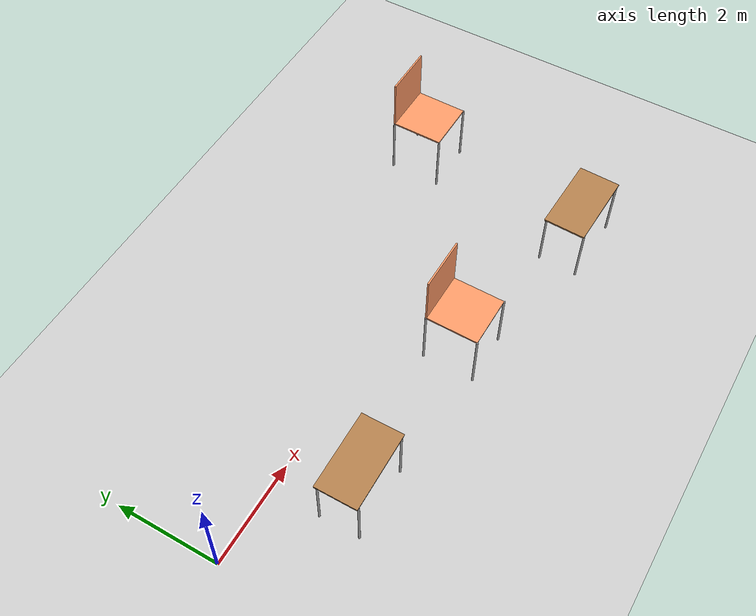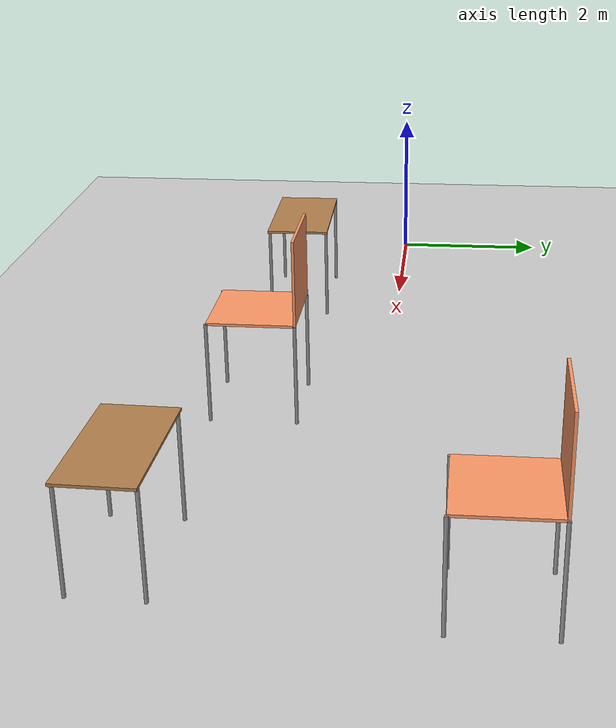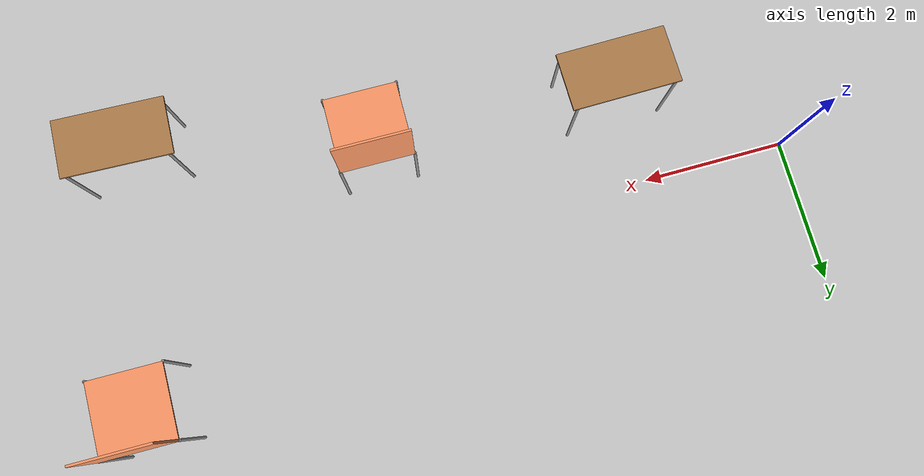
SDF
<sdf version="1.7">
 <world name="default">
  <model name="ground_plane">
   <static>1</static>
   <link name="link">
    <collision name="collision">
     <geometry><plane><normal>0 0 1</normal><size>100 100</size></plane></geometry>
     <surface>
      <contact><collide_bitmask>65535</collide_bitmask></contact>
      <friction><ode><mu>100</mu><mu2>50</mu2></ode></friction>
     </surface>
    </collision>
    <visual name="visual">
     <cast_shadows>0</cast_shadows>
     <geometry><plane><normal>0 0 1</normal><size>100 100</size></plane></geometry>
     <material>
      <script><uri>file://media/materials/scripts/gazebo.material</uri><name>Gazebo/Grey</name></script>
     </material>
    </visual>
   </link>
  </model>
  <model name="Regular_Table_clone">
   <link name="link_0">
    <inertial>
     <mass>1</mass>
     <inertia>
      <ixx>0.166667</ixx>
      <ixy>0</ixy>
      <ixz>0</ixz>
      <iyy>0.166667</iyy>
      <iyz>0</iyz>
      <izz>0.166667</izz>
     </inertia>
    </inertial>
    <pose>-0 0 1.2 0 -0 0</pose>
    <visual name="visual">
     <geometry><box><size>1.5 0.8 0.03</size></box></geometry>
     <material>
      <lighting>1</lighting>
      <script><uri>file://media/materials/scripts/gazebo.material</uri><name>Gazebo/Wood</name></script>
      <shader type="pixel"><normal_map>__default__</normal_map></shader>
      <ambient>0.3 0.3 0.3 1</ambient>
      <diffuse>0.7 0.7 0.7 1</diffuse>
      <specular>0.01 0.01 0.01 1</specular>
      <emissive>0 0 0 1</emissive>
     </material>
    </visual>
    <collision name="collision">
     <geometry><box><size>1.5 0.8 0.03</size></box></geometry>
     <surface>
      <friction>
       <ode><mu>1</mu><mu2>1</mu2><fdir1>0 0 0</fdir1><slip1>0</slip1><slip2>0</slip2></ode>
       <torsional>
        <coefficient>1</coefficient>
        <patch_radius>0</patch_radius>
        <surface_radius>0</surface_radius>
        <use_patch_radius>1</use_patch_radius>
        <ode><slip>0</slip></ode>
       </torsional>
      </friction>
      <bounce><restitution_coefficient>0</restitution_coefficient><threshold>1e+06</threshold></bounce>
      <contact>
       <collide_without_contact>0</collide_without_contact>
       <collide_without_contact_bitmask>1</collide_without_contact_bitmask>
       <collide_bitmask>1</collide_bitmask>
       <ode>
        <soft_cfm>0</soft_cfm>
        <soft_erp>0.2</soft_erp>
        <kp>1e+13</kp>
        <kd>1</kd>
        <max_vel>0.01</max_vel>
        <min_depth>0</min_depth>
       </ode>
       <bullet>
        <split_impulse>1</split_impulse>
        <split_impulse_penetration_threshold>-0.01</split_impulse_penetration_threshold>
        <soft_cfm>0</soft_cfm>
        <soft_erp>0.2</soft_erp>
        <kp>1e+13</kp>
        <kd>1</kd>
       </bullet>
      </contact>
     </surface>
    </collision>
   </link>
   <link name="link_3">
    <inertial>
     <mass>1</mass>
     <inertia><ixx>0.145833</ixx><ixy>0</ixy><ixz>0</ixz><iyy>0.145833</iyy><iyz>0</iyz><izz>0.125</izz></inertia>
    </inertial>
    <pose>0.68 0.38 0.6 0 -0 0</pose>
    <visual name="visual">
     <geometry><cylinder><radius>0.02</radius><length>1.2</length></cylinder></geometry>
     <material>
      <lighting>1</lighting>
      <script><uri>file://media/materials/scripts/gazebo.material</uri><name>Gazebo/Grey</name></script>
      <shader type="pixel"><normal_map>__default__</normal_map></shader>
      <ambient>0.3 0.3 0.3 1</ambient>
      <diffuse>0.7 0.7 0.7 1</diffuse>
      <specular>0.01 0.01 0.01 1</specular>
      <emissive>0 0 0 1</emissive>
     </material>
    </visual>
    <collision name="collision">
     <geometry><cylinder><radius>0.02</radius><length>1.2</length></cylinder></geometry>
     <surface>
      <friction>
       <ode><mu>1</mu><mu2>1</mu2><fdir1>0 0 0</fdir1><slip1>0</slip1><slip2>0</slip2></ode>
       <torsional>
        <coefficient>1</coefficient>
        <patch_radius>0</patch_radius>
        <surface_radius>0</surface_radius>
        <use_patch_radius>1</use_patch_radius>
        <ode><slip>0</slip></ode>
       </torsional>
      </friction>
      <bounce><restitution_coefficient>0</restitution_coefficient><threshold>1e+06</threshold></bounce>
      <contact>
       <collide_without_contact>0</collide_without_contact>
       <collide_without_contact_bitmask>1</collide_without_contact_bitmask>
       <collide_bitmask>1</collide_bitmask>
       <ode>
        <soft_cfm>0</soft_cfm>
        <soft_erp>0.2</soft_erp>
        <kp>1e+13</kp>
        <kd>1</kd>
        <max_vel>0.01</max_vel>
        <min_depth>0</min_depth>
       </ode>
       <bullet>
        <split_impulse>1</split_impulse>
        <split_impulse_penetration_threshold>-0.01</split_impulse_penetration_threshold>
        <soft_cfm>0</soft_cfm>
        <soft_erp>0.2</soft_erp>
        <kp>1e+13</kp>
        <kd>1</kd>
       </bullet>
      </contact>
     </surface>
    </collision>
   </link>
   <link name="link_3_clone">
    <inertial>
     <mass>1</mass>
     <inertia><ixx>0.145833</ixx><ixy>0</ixy><ixz>0</ixz><iyy>0.145833</iyy><iyz>0</iyz><izz>0.125</izz></inertia>
    </inertial>
    <pose>0.68 -0.38 0.6 0 -0 0</pose>
    <visual name="visual">
     <geometry><cylinder><radius>0.02</radius><length>1.2</length></cylinder></geometry>
     <material>
      <lighting>1</lighting>
      <script><uri>file://media/materials/scripts/gazebo.material</uri><name>Gazebo/Grey</name></script>
      <shader type="pixel"><normal_map>__default__</normal_map></shader>
      <ambient>0.3 0.3 0.3 1</ambient>
      <diffuse>0.7 0.7 0.7 1</diffuse>
      <specular>0.01 0.01 0.01 1</specular>
      <emissive>0 0 0 1</emissive>
     </material>
    </visual>
    <collision name="collision">
     <geometry><cylinder><radius>0.02</radius><length>1.2</length></cylinder></geometry>
     <surface>
      <friction>
       <ode><mu>1</mu><mu2>1</mu2><fdir1>0 0 0</fdir1><slip1>0</slip1><slip2>0</slip2></ode>
       <torsional>
        <coefficient>1</coefficient>
        <patch_radius>0</patch_radius>
        <surface_radius>0</surface_radius>
        <use_patch_radius>1</use_patch_radius>
        <ode><slip>0</slip></ode>
       </torsional>
      </friction>
      <bounce><restitution_coefficient>0</restitution_coefficient><threshold>1e+06</threshold></bounce>
      <contact>
       <collide_without_contact>0</collide_without_contact>
       <collide_without_contact_bitmask>1</collide_without_contact_bitmask>
       <collide_bitmask>1</collide_bitmask>
       <ode>
        <soft_cfm>0</soft_cfm>
        <soft_erp>0.2</soft_erp>
        <kp>1e+13</kp>
        <kd>1</kd>
        <max_vel>0.01</max_vel>
        <min_depth>0</min_depth>
       </ode>
       <bullet>
        <split_impulse>1</split_impulse>
        <split_impulse_penetration_threshold>-0.01</split_impulse_penetration_threshold>
        <soft_cfm>0</soft_cfm>
        <soft_erp>0.2</soft_erp>
        <kp>1e+13</kp>
        <kd>1</kd>
       </bullet>
      </contact>
     </surface>
    </collision>
   </link>
   <link name="link_3_clone_0">
    <inertial>
     <mass>1</mass>
     <inertia><ixx>0.145833</ixx><ixy>0</ixy><ixz>0</ixz><iyy>0.145833</iyy><iyz>0</iyz><izz>0.125</izz></inertia>
    </inertial>
    <pose>-0.68 -0.38 0.6 0 -0 0</pose>
    <visual name="visual">
     <geometry><cylinder><radius>0.02</radius><length>1.2</length></cylinder></geometry>
     <material>
      <lighting>1</lighting>
      <script><uri>file://media/materials/scripts/gazebo.material</uri><name>Gazebo/Grey</name></script>
      <shader type="pixel"><normal_map>__default__</normal_map></shader>
      <ambient>0.3 0.3 0.3 1</ambient>
      <diffuse>0.7 0.7 0.7 1</diffuse>
      <specular>0.01 0.01 0.01 1</specular>
      <emissive>0 0 0 1</emissive>
     </material>
    </visual>
    <collision name="collision">
     <geometry><cylinder><radius>0.02</radius><length>1.2</length></cylinder></geometry>
     <surface>
      <friction>
       <ode><mu>1</mu><mu2>1</mu2><fdir1>0 0 0</fdir1><slip1>0</slip1><slip2>0</slip2></ode>
       <torsional>
        <coefficient>1</coefficient>
        <patch_radius>0</patch_radius>
        <surface_radius>0</surface_radius>
        <use_patch_radius>1</use_patch_radius>
        <ode><slip>0</slip></ode>
       </torsional>
      </friction>
      <bounce><restitution_coefficient>0</restitution_coefficient><threshold>1e+06</threshold></bounce>
      <contact>
       <collide_without_contact>0</collide_without_contact>
       <collide_without_contact_bitmask>1</collide_without_contact_bitmask>
       <collide_bitmask>1</collide_bitmask>
       <ode>
        <soft_cfm>0</soft_cfm>
        <soft_erp>0.2</soft_erp>
        <kp>1e+13</kp>
        <kd>1</kd>
        <max_vel>0.01</max_vel>
        <min_depth>0</min_depth>
       </ode>
       <bullet>
        <split_impulse>1</split_impulse>
        <split_impulse_penetration_threshold>-0.01</split_impulse_penetration_threshold>
        <soft_cfm>0</soft_cfm>
        <soft_erp>0.2</soft_erp>
        <kp>1e+13</kp>
        <kd>1</kd>
       </bullet>
      </contact>
     </surface>
    </collision>
   </link>
   <link name="link_3_clone_clone">
    <inertial>
     <mass>1</mass>
     <inertia><ixx>0.145833</ixx><ixy>0</ixy><ixz>0</ixz><iyy>0.145833</iyy><iyz>0</iyz><izz>0.125</izz></inertia>
    </inertial>
    <pose>-0.68 0.38 0.6 0 -0 0</pose>
    <visual name="visual">
     <geometry><cylinder><radius>0.02</radius><length>1.2</length></cylinder></geometry>
     <material>
      <lighting>1</lighting>
      <script><uri>file://media/materials/scripts/gazebo.material</uri><name>Gazebo/Grey</name></script>
      <shader type="pixel"><normal_map>__default__</normal_map></shader>
      <ambient>0.3 0.3 0.3 1</ambient>
      <diffuse>0.7 0.7 0.7 1</diffuse>
      <specular>0.01 0.01 0.01 1</specular>
      <emissive>0 0 0 1</emissive>
     </material>
    </visual>
    <collision name="collision">
     <geometry><cylinder><radius>0.02</radius><length>1.2</length></cylinder></geometry>
     <surface>
      <friction>
       <ode><mu>1</mu><mu2>1</mu2><fdir1>0 0 0</fdir1><slip1>0</slip1><slip2>0</slip2></ode>
       <torsional>
        <coefficient>1</coefficient>
        <patch_radius>0</patch_radius>
        <surface_radius>0</surface_radius>
        <use_patch_radius>1</use_patch_radius>
        <ode><slip>0</slip></ode>
       </torsional>
      </friction>
      <bounce><restitution_coefficient>0</restitution_coefficient><threshold>1e+06</threshold></bounce>
      <contact>
       <collide_without_contact>0</collide_without_contact>
       <collide_without_contact_bitmask>1</collide_without_contact_bitmask>
       <collide_bitmask>1</collide_bitmask>
       <ode>
        <soft_cfm>0</soft_cfm>
        <soft_erp>0.2</soft_erp>
        <kp>1e+13</kp>
        <kd>1</kd>
        <max_vel>0.01</max_vel>
        <min_depth>0</min_depth>
       </ode>
       <bullet>
        <split_impulse>1</split_impulse>
        <split_impulse_penetration_threshold>-0.01</split_impulse_penetration_threshold>
        <soft_cfm>0</soft_cfm>
        <soft_erp>0.2</soft_erp>
        <kp>1e+13</kp>
        <kd>1</kd>
       </bullet>
      </contact>
     </surface>
    </collision>
   </link>
   <joint name="link_0_JOINT_1" type="fixed">
    <parent>link_0</parent>
    <child>link_3_clone</child>
    <physics>
     <ode><limit><cfm>0</cfm><erp>0.2</erp></limit><suspension><cfm>0</cfm><erp>0.2</erp></suspension></ode>
    </physics>
   </joint>
   <joint name="link_0_JOINT_3" type="fixed">
    <parent>link_0</parent>
    <child>link_3_clone_0</child>
    <physics>
     <ode><limit><cfm>0</cfm><erp>0.2</erp></limit><suspension><cfm>0</cfm><erp>0.2</erp></suspension></ode>
    </physics>
   </joint>
   <joint name="link_0_JOINT_4" type="fixed">
    <parent>link_0</parent>
    <child>link_3</child>
    <physics>
     <ode><limit><cfm>0</cfm><erp>0.2</erp></limit><suspension><cfm>0</cfm><erp>0.2</erp></suspension></ode>
    </physics>
   </joint>
   <joint name="link_0_JOINT_5" type="fixed">
    <parent>link_0</parent>
    <child>link_3_clone_clone</child>
    <physics>
     <ode><limit><cfm>0</cfm><erp>0.2</erp></limit><suspension><cfm>0</cfm><erp>0.2</erp></suspension></ode>
    </physics>
   </joint>
   <static>0</static>
   <pose>8.8561 -2.18399 0 2e-06 -0 -0.035872</pose>
  </model>
  <model name="Chair">
   <link name="link_0">
    <inertial>
     <mass>1.15</mass>
     <inertia>
      <ixx>0.0959196</ixx>
      <ixy>0</ixy>
      <ixz>0</ixz>
      <iyy>0.0959196</iyy>
      <iyz>0</iyz>
      <izz>0.191667</izz>
     </inertia>
    </inertial>
    <pose>0 0 1.2 0 -0 0</pose>
    <visual name="visual">
     <geometry><box><size>1 1 0.03</size></box></geometry>
     <material>
      <lighting>1</lighting>
      <script><uri>file://media/materials/scripts/gazebo.material</uri><name>Gazebo/Grey</name></script>
      <shader type="pixel"><normal_map>__default__</normal_map></shader>
      <ambient>1 0.6 0.4 1</ambient>
      <diffuse>0.7 0.7 0.7 1</diffuse>
      <specular>0.01 0.01 0.01 1</specular>
      <emissive>0 0 0 1</emissive>
     </material>
    </visual>
    <collision name="collision">
     <geometry><box><size>1 1 0.03</size></box></geometry>
     <surface>
      <friction>
       <ode><mu>1</mu><mu2>1</mu2><fdir1>0 0 0</fdir1><slip1>0</slip1><slip2>0</slip2></ode>
       <torsional>
        <coefficient>1</coefficient>
        <patch_radius>0</patch_radius>
        <surface_radius>0</surface_radius>
        <use_patch_radius>1</use_patch_radius>
        <ode><slip>0</slip></ode>
       </torsional>
      </friction>
      <bounce><restitution_coefficient>0</restitution_coefficient><threshold>1e+06</threshold></bounce>
      <contact>
       <collide_without_contact>0</collide_without_contact>
       <collide_without_contact_bitmask>1</collide_without_contact_bitmask>
       <collide_bitmask>1</collide_bitmask>
       <ode>
        <soft_cfm>0</soft_cfm>
        <soft_erp>0.2</soft_erp>
        <kp>1e+13</kp>
        <kd>1</kd>
        <max_vel>0.01</max_vel>
        <min_depth>0</min_depth>
       </ode>
       <bullet>
        <split_impulse>1</split_impulse>
        <split_impulse_penetration_threshold>-0.01</split_impulse_penetration_threshold>
        <soft_cfm>0</soft_cfm>
        <soft_erp>0.2</soft_erp>
        <kp>1e+13</kp>
        <kd>1</kd>
       </bullet>
      </contact>
     </surface>
    </collision>
   </link>
   <link name="link_0_clone">
    <inertial>
     <mass>1</mass>
     <inertia>
      <ixx>0.166667</ixx>
      <ixy>0</ixy>
      <ixz>0</ixz>
      <iyy>0.166667</iyy>
      <iyz>0</iyz>
      <izz>0.166667</izz>
     </inertia>
    </inertial>
    <pose>0 0.5 1.7 1.5707 -0 0</pose>
    <visual name="visual">
     <geometry><box><size>1 1 0.03</size></box></geometry>
     <material>
      <lighting>1</lighting>
      <script><uri>file://media/materials/scripts/gazebo.material</uri><name>Gazebo/Grey</name></script>
      <shader type="pixel"><normal_map>__default__</normal_map></shader>
      <ambient>1 0.6 0.4 1</ambient>
      <diffuse>0.7 0.7 0.7 1</diffuse>
      <specular>0.01 0.01 0.01 1</specular>
      <emissive>0 0 0 1</emissive>
     </material>
    </visual>
    <collision name="collision">
     <geometry><box><size>1 1 0.03</size></box></geometry>
     <surface>
      <friction>
       <ode><mu>1</mu><mu2>1</mu2><fdir1>0 0 0</fdir1><slip1>0</slip1><slip2>0</slip2></ode>
       <torsional>
        <coefficient>1</coefficient>
        <patch_radius>0</patch_radius>
        <surface_radius>0</surface_radius>
        <use_patch_radius>1</use_patch_radius>
        <ode><slip>0</slip></ode>
       </torsional>
      </friction>
      <bounce><restitution_coefficient>0</restitution_coefficient><threshold>1e+06</threshold></bounce>
      <contact>
       <collide_without_contact>0</collide_without_contact>
       <collide_without_contact_bitmask>1</collide_without_contact_bitmask>
       <collide_bitmask>1</collide_bitmask>
       <ode>
        <soft_cfm>0</soft_cfm>
        <soft_erp>0.2</soft_erp>
        <kp>1e+13</kp>
        <kd>1</kd>
        <max_vel>0.01</max_vel>
        <min_depth>0</min_depth>
       </ode>
       <bullet>
        <split_impulse>1</split_impulse>
        <split_impulse_penetration_threshold>-0.01</split_impulse_penetration_threshold>
        <soft_cfm>0</soft_cfm>
        <soft_erp>0.2</soft_erp>
        <kp>1e+13</kp>
        <kd>1</kd>
       </bullet>
      </contact>
     </surface>
    </collision>
   </link>
   <link name="link_3">
    <inertial>
     <mass>1</mass>
     <inertia><ixx>0.145833</ixx><ixy>0</ixy><ixz>0</ixz><iyy>0.145833</iyy><iyz>0</iyz><izz>0.125</izz></inertia>
    </inertial>
    <pose>0.5 0.5 0.6 0 -0 0</pose>
    <visual name="visual">
     <geometry><cylinder><radius>0.02</radius><length>1.2</length></cylinder></geometry>
     <material>
      <lighting>1</lighting>
      <script><uri>file://media/materials/scripts/gazebo.material</uri><name>Gazebo/Grey</name></script>
      <shader type="pixel"><normal_map>__default__</normal_map></shader>
      <ambient>0.3 0.3 0.3 1</ambient>
      <diffuse>0.7 0.7 0.7 1</diffuse>
      <specular>0.01 0.01 0.01 1</specular>
      <emissive>0 0 0 1</emissive>
     </material>
    </visual>
    <collision name="collision">
     <geometry><cylinder><radius>0.02</radius><length>1.2</length></cylinder></geometry>
     <surface>
      <friction>
       <ode><mu>1</mu><mu2>1</mu2><fdir1>0 0 0</fdir1><slip1>0</slip1><slip2>0</slip2></ode>
       <torsional>
        <coefficient>1</coefficient>
        <patch_radius>0</patch_radius>
        <surface_radius>0</surface_radius>
        <use_patch_radius>1</use_patch_radius>
        <ode><slip>0</slip></ode>
       </torsional>
      </friction>
      <bounce><restitution_coefficient>0</restitution_coefficient><threshold>1e+06</threshold></bounce>
      <contact>
       <collide_without_contact>0</collide_without_contact>
       <collide_without_contact_bitmask>1</collide_without_contact_bitmask>
       <collide_bitmask>1</collide_bitmask>
       <ode>
        <soft_cfm>0</soft_cfm>
        <soft_erp>0.2</soft_erp>
        <kp>1e+13</kp>
        <kd>1</kd>
        <max_vel>0.01</max_vel>
        <min_depth>0</min_depth>
       </ode>
       <bullet>
        <split_impulse>1</split_impulse>
        <split_impulse_penetration_threshold>-0.01</split_impulse_penetration_threshold>
        <soft_cfm>0</soft_cfm>
        <soft_erp>0.2</soft_erp>
        <kp>1e+13</kp>
        <kd>1</kd>
       </bullet>
      </contact>
     </surface>
    </collision>
   </link>
   <link name="link_3_clone">
    <inertial>
     <mass>1</mass>
     <inertia><ixx>0.145833</ixx><ixy>0</ixy><ixz>0</ixz><iyy>0.145833</iyy><iyz>0</iyz><izz>0.125</izz></inertia>
    </inertial>
    <pose>0.5 -0.5 0.6 0 -0 0</pose>
    <visual name="visual">
     <geometry><cylinder><radius>0.02</radius><length>1.2</length></cylinder></geometry>
     <material>
      <lighting>1</lighting>
      <script><uri>file://media/materials/scripts/gazebo.material</uri><name>Gazebo/Grey</name></script>
      <shader type="pixel"><normal_map>__default__</normal_map></shader>
      <ambient>0.3 0.3 0.3 1</ambient>
      <diffuse>0.7 0.7 0.7 1</diffuse>
      <specular>0.01 0.01 0.01 1</specular>
      <emissive>0 0 0 1</emissive>
     </material>
    </visual>
    <collision name="collision">
     <geometry><cylinder><radius>0.02</radius><length>1.2</length></cylinder></geometry>
     <surface>
      <friction>
       <ode><mu>1</mu><mu2>1</mu2><fdir1>0 0 0</fdir1><slip1>0</slip1><slip2>0</slip2></ode>
       <torsional>
        <coefficient>1</coefficient>
        <patch_radius>0</patch_radius>
        <surface_radius>0</surface_radius>
        <use_patch_radius>1</use_patch_radius>
        <ode><slip>0</slip></ode>
       </torsional>
      </friction>
      <bounce><restitution_coefficient>0</restitution_coefficient><threshold>1e+06</threshold></bounce>
      <contact>
       <collide_without_contact>0</collide_without_contact>
       <collide_without_contact_bitmask>1</collide_without_contact_bitmask>
       <collide_bitmask>1</collide_bitmask>
       <ode>
        <soft_cfm>0</soft_cfm>
        <soft_erp>0.2</soft_erp>
        <kp>1e+13</kp>
        <kd>1</kd>
        <max_vel>0.01</max_vel>
        <min_depth>0</min_depth>
       </ode>
       <bullet>
        <split_impulse>1</split_impulse>
        <split_impulse_penetration_threshold>-0.01</split_impulse_penetration_threshold>
        <soft_cfm>0</soft_cfm>
        <soft_erp>0.2</soft_erp>
        <kp>1e+13</kp>
        <kd>1</kd>
       </bullet>
      </contact>
     </surface>
    </collision>
   </link>
   <link name="link_3_clone_0">
    <inertial>
     <mass>1</mass>
     <inertia><ixx>0.145833</ixx><ixy>0</ixy><ixz>0</ixz><iyy>0.145833</iyy><iyz>0</iyz><izz>0.125</izz></inertia>
    </inertial>
    <pose>-0.5 -0.5 0.6 0 -0 0</pose>
    <visual name="visual">
     <geometry><cylinder><radius>0.02</radius><length>1.2</length></cylinder></geometry>
     <material>
      <lighting>1</lighting>
      <script><uri>file://media/materials/scripts/gazebo.material</uri><name>Gazebo/Grey</name></script>
      <shader type="pixel"><normal_map>__default__</normal_map></shader>
      <ambient>0.3 0.3 0.3 1</ambient>
      <diffuse>0.7 0.7 0.7 1</diffuse>
      <specular>0.01 0.01 0.01 1</specular>
      <emissive>0 0 0 1</emissive>
     </material>
    </visual>
    <collision name="collision">
     <geometry><cylinder><radius>0.02</radius><length>1.2</length></cylinder></geometry>
     <surface>
      <friction>
       <ode><mu>1</mu><mu2>1</mu2><fdir1>0 0 0</fdir1><slip1>0</slip1><slip2>0</slip2></ode>
       <torsional>
        <coefficient>1</coefficient>
        <patch_radius>0</patch_radius>
        <surface_radius>0</surface_radius>
        <use_patch_radius>1</use_patch_radius>
        <ode><slip>0</slip></ode>
       </torsional>
      </friction>
      <bounce><restitution_coefficient>0</restitution_coefficient><threshold>1e+06</threshold></bounce>
      <contact>
       <collide_without_contact>0</collide_without_contact>
       <collide_without_contact_bitmask>1</collide_without_contact_bitmask>
       <collide_bitmask>1</collide_bitmask>
       <ode>
        <soft_cfm>0</soft_cfm>
        <soft_erp>0.2</soft_erp>
        <kp>1e+13</kp>
        <kd>1</kd>
        <max_vel>0.01</max_vel>
        <min_depth>0</min_depth>
       </ode>
       <bullet>
        <split_impulse>1</split_impulse>
        <split_impulse_penetration_threshold>-0.01</split_impulse_penetration_threshold>
        <soft_cfm>0</soft_cfm>
        <soft_erp>0.2</soft_erp>
        <kp>1e+13</kp>
        <kd>1</kd>
       </bullet>
      </contact>
     </surface>
    </collision>
   </link>
   <link name="link_3_clone_clone">
    <inertial>
     <mass>1</mass>
     <inertia><ixx>0.145833</ixx><ixy>0</ixy><ixz>0</ixz><iyy>0.145833</iyy><iyz>0</iyz><izz>0.125</izz></inertia>
    </inertial>
    <pose>-0.5 0.5 0.6 0 -0 0</pose>
    <visual name="visual">
     <geometry><cylinder><radius>0.02</radius><length>1.2</length></cylinder></geometry>
     <material>
      <lighting>1</lighting>
      <script><uri>file://media/materials/scripts/gazebo.material</uri><name>Gazebo/Grey</name></script>
      <shader type="pixel"><normal_map>__default__</normal_map></shader>
      <ambient>0.3 0.3 0.3 1</ambient>
      <diffuse>0.7 0.7 0.7 1</diffuse>
      <specular>0.01 0.01 0.01 1</specular>
      <emissive>0 0 0 1</emissive>
     </material>
    </visual>
    <collision name="collision">
     <geometry><cylinder><radius>0.02</radius><length>1.2</length></cylinder></geometry>
     <surface>
      <friction>
       <ode><mu>1</mu><mu2>1</mu2><fdir1>0 0 0</fdir1><slip1>0</slip1><slip2>0</slip2></ode>
       <torsional>
        <coefficient>1</coefficient>
        <patch_radius>0</patch_radius>
        <surface_radius>0</surface_radius>
        <use_patch_radius>1</use_patch_radius>
        <ode><slip>0</slip></ode>
       </torsional>
      </friction>
      <bounce><restitution_coefficient>0</restitution_coefficient><threshold>1e+06</threshold></bounce>
      <contact>
       <collide_without_contact>0</collide_without_contact>
       <collide_without_contact_bitmask>1</collide_without_contact_bitmask>
       <collide_bitmask>1</collide_bitmask>
       <ode>
        <soft_cfm>0</soft_cfm>
        <soft_erp>0.2</soft_erp>
        <kp>1e+13</kp>
        <kd>1</kd>
        <max_vel>0.01</max_vel>
        <min_depth>0</min_depth>
       </ode>
       <bullet>
        <split_impulse>1</split_impulse>
        <split_impulse_penetration_threshold>-0.01</split_impulse_penetration_threshold>
        <soft_cfm>0</soft_cfm>
        <soft_erp>0.2</soft_erp>
        <kp>1e+13</kp>
        <kd>1</kd>
       </bullet>
      </contact>
     </surface>
    </collision>
   </link>
   <joint name="link_0_JOINT_13" type="fixed">
    <parent>link_0</parent>
    <child>link_3_clone</child>
    <physics>
     <ode><limit><cfm>0</cfm><erp>0.2</erp></limit><suspension><cfm>0</cfm><erp>0.2</erp></suspension></ode>
    </physics>
   </joint>
   <joint name="link_0_JOINT_14" type="fixed">
    <parent>link_0</parent>
    <child>link_0_clone</child>
    <physics>
     <ode><limit><cfm>0</cfm><erp>0.2</erp></limit><suspension><cfm>0</cfm><erp>0.2</erp></suspension></ode>
    </physics>
   </joint>
   <joint name="link_0_JOINT_15" type="fixed">
    <parent>link_0</parent>
    <child>link_3_clone_0</child>
    <physics>
     <ode><limit><cfm>0</cfm><erp>0.2</erp></limit><suspension><cfm>0</cfm><erp>0.2</erp></suspension></ode>
    </physics>
   </joint>
   <joint name="link_0_JOINT_16" type="fixed">
    <parent>link_0</parent>
    <child>link_3</child>
    <physics>
     <ode><limit><cfm>0</cfm><erp>0.2</erp></limit><suspension><cfm>0</cfm><erp>0.2</erp></suspension></ode>
    </physics>
   </joint>
   <joint name="link_0_JOINT_19" type="fixed">
    <parent>link_0</parent>
    <child>link_3_clone_clone</child>
    <physics>
     <ode><limit><cfm>0</cfm><erp>0.2</erp></limit><suspension><cfm>0</cfm><erp>0.2</erp></suspension></ode>
    </physics>
   </joint>
   <static>0</static>
   <pose>9.33577 1.32442 -0 -1e-06 -0 -0.009064</pose>
  </model>
  <model name="Chair_clone">
   <link name="link_0">
    <inertial>
     <mass>1.15</mass>
     <inertia>
      <ixx>0.0959196</ixx>
      <ixy>0</ixy>
      <ixz>0</ixz>
      <iyy>0.0959196</iyy>
      <iyz>0</iyz>
      <izz>0.191667</izz>
     </inertia>
    </inertial>
    <pose>0 0 1.2 0 -0 0</pose>
    <visual name="visual">
     <geometry><box><size>1 1 0.03</size></box></geometry>
     <material>
      <lighting>1</lighting>
      <script><uri>file://media/materials/scripts/gazebo.material</uri><name>Gazebo/Grey</name></script>
      <shader type="pixel"><normal_map>__default__</normal_map></shader>
      <ambient>1 0.6 0.4 1</ambient>
      <diffuse>0.7 0.7 0.7 1</diffuse>
      <specular>0.01 0.01 0.01 1</specular>
      <emissive>0 0 0 1</emissive>
     </material>
    </visual>
    <collision name="collision">
     <geometry><box><size>1 1 0.03</size></box></geometry>
     <surface>
      <friction>
       <ode><mu>1</mu><mu2>1</mu2><fdir1>0 0 0</fdir1><slip1>0</slip1><slip2>0</slip2></ode>
       <torsional>
        <coefficient>1</coefficient>
        <patch_radius>0</patch_radius>
        <surface_radius>0</surface_radius>
        <use_patch_radius>1</use_patch_radius>
        <ode><slip>0</slip></ode>
       </torsional>
      </friction>
      <bounce><restitution_coefficient>0</restitution_coefficient><threshold>1e+06</threshold></bounce>
      <contact>
       <collide_without_contact>0</collide_without_contact>
       <collide_without_contact_bitmask>1</collide_without_contact_bitmask>
       <collide_bitmask>1</collide_bitmask>
       <ode>
        <soft_cfm>0</soft_cfm>
        <soft_erp>0.2</soft_erp>
        <kp>1e+13</kp>
        <kd>1</kd>
        <max_vel>0.01</max_vel>
        <min_depth>0</min_depth>
       </ode>
       <bullet>
        <split_impulse>1</split_impulse>
        <split_impulse_penetration_threshold>-0.01</split_impulse_penetration_threshold>
        <soft_cfm>0</soft_cfm>
        <soft_erp>0.2</soft_erp>
        <kp>1e+13</kp>
        <kd>1</kd>
       </bullet>
      </contact>
     </surface>
    </collision>
   </link>
   <link name="link_0_clone">
    <inertial>
     <mass>1</mass>
     <inertia>
      <ixx>0.166667</ixx>
      <ixy>0</ixy>
      <ixz>0</ixz>
      <iyy>0.166667</iyy>
      <iyz>0</iyz>
      <izz>0.166667</izz>
     </inertia>
    </inertial>
    <pose>0 0.5 1.7 1.5707 -0 0</pose>
    <visual name="visual">
     <geometry><box><size>1 1 0.03</size></box></geometry>
     <material>
      <lighting>1</lighting>
      <script><uri>file://media/materials/scripts/gazebo.material</uri><name>Gazebo/Grey</name></script>
      <shader type="pixel"><normal_map>__default__</normal_map></shader>
      <ambient>1 0.6 0.4 1</ambient>
      <diffuse>0.7 0.7 0.7 1</diffuse>
      <specular>0.01 0.01 0.01 1</specular>
      <emissive>0 0 0 1</emissive>
     </material>
    </visual>
    <collision name="collision">
     <geometry><box><size>1 1 0.03</size></box></geometry>
     <surface>
      <friction>
       <ode><mu>1</mu><mu2>1</mu2><fdir1>0 0 0</fdir1><slip1>0</slip1><slip2>0</slip2></ode>
       <torsional>
        <coefficient>1</coefficient>
        <patch_radius>0</patch_radius>
        <surface_radius>0</surface_radius>
        <use_patch_radius>1</use_patch_radius>
        <ode><slip>0</slip></ode>
       </torsional>
      </friction>
      <bounce><restitution_coefficient>0</restitution_coefficient><threshold>1e+06</threshold></bounce>
      <contact>
       <collide_without_contact>0</collide_without_contact>
       <collide_without_contact_bitmask>1</collide_without_contact_bitmask>
       <collide_bitmask>1</collide_bitmask>
       <ode>
        <soft_cfm>0</soft_cfm>
        <soft_erp>0.2</soft_erp>
        <kp>1e+13</kp>
        <kd>1</kd>
        <max_vel>0.01</max_vel>
        <min_depth>0</min_depth>
       </ode>
       <bullet>
        <split_impulse>1</split_impulse>
        <split_impulse_penetration_threshold>-0.01</split_impulse_penetration_threshold>
        <soft_cfm>0</soft_cfm>
        <soft_erp>0.2</soft_erp>
        <kp>1e+13</kp>
        <kd>1</kd>
       </bullet>
      </contact>
     </surface>
    </collision>
   </link>
   <link name="link_3">
    <inertial>
     <mass>1</mass>
     <inertia><ixx>0.145833</ixx><ixy>0</ixy><ixz>0</ixz><iyy>0.145833</iyy><iyz>0</iyz><izz>0.125</izz></inertia>
    </inertial>
    <pose>0.5 0.5 0.6 0 -0 0</pose>
    <visual name="visual">
     <geometry><cylinder><radius>0.02</radius><length>1.2</length></cylinder></geometry>
     <material>
      <lighting>1</lighting>
      <script><uri>file://media/materials/scripts/gazebo.material</uri><name>Gazebo/Grey</name></script>
      <shader type="pixel"><normal_map>__default__</normal_map></shader>
      <ambient>0.3 0.3 0.3 1</ambient>
      <diffuse>0.7 0.7 0.7 1</diffuse>
      <specular>0.01 0.01 0.01 1</specular>
      <emissive>0 0 0 1</emissive>
     </material>
    </visual>
    <collision name="collision">
     <geometry><cylinder><radius>0.02</radius><length>1.2</length></cylinder></geometry>
     <surface>
      <friction>
       <ode><mu>1</mu><mu2>1</mu2><fdir1>0 0 0</fdir1><slip1>0</slip1><slip2>0</slip2></ode>
       <torsional>
        <coefficient>1</coefficient>
        <patch_radius>0</patch_radius>
        <surface_radius>0</surface_radius>
        <use_patch_radius>1</use_patch_radius>
        <ode><slip>0</slip></ode>
       </torsional>
      </friction>
      <bounce><restitution_coefficient>0</restitution_coefficient><threshold>1e+06</threshold></bounce>
      <contact>
       <collide_without_contact>0</collide_without_contact>
       <collide_without_contact_bitmask>1</collide_without_contact_bitmask>
       <collide_bitmask>1</collide_bitmask>
       <ode>
        <soft_cfm>0</soft_cfm>
        <soft_erp>0.2</soft_erp>
        <kp>1e+13</kp>
        <kd>1</kd>
        <max_vel>0.01</max_vel>
        <min_depth>0</min_depth>
       </ode>
       <bullet>
        <split_impulse>1</split_impulse>
        <split_impulse_penetration_threshold>-0.01</split_impulse_penetration_threshold>
        <soft_cfm>0</soft_cfm>
        <soft_erp>0.2</soft_erp>
        <kp>1e+13</kp>
        <kd>1</kd>
       </bullet>
      </contact>
     </surface>
    </collision>
   </link>
   <link name="link_3_clone">
    <inertial>
     <mass>1</mass>
     <inertia><ixx>0.145833</ixx><ixy>0</ixy><ixz>0</ixz><iyy>0.145833</iyy><iyz>0</iyz><izz>0.125</izz></inertia>
    </inertial>
    <pose>0.5 -0.5 0.6 0 -0 0</pose>
    <visual name="visual">
     <geometry><cylinder><radius>0.02</radius><length>1.2</length></cylinder></geometry>
     <material>
      <lighting>1</lighting>
      <script><uri>file://media/materials/scripts/gazebo.material</uri><name>Gazebo/Grey</name></script>
      <shader type="pixel"><normal_map>__default__</normal_map></shader>
      <ambient>0.3 0.3 0.3 1</ambient>
      <diffuse>0.7 0.7 0.7 1</diffuse>
      <specular>0.01 0.01 0.01 1</specular>
      <emissive>0 0 0 1</emissive>
     </material>
    </visual>
    <collision name="collision">
     <geometry><cylinder><radius>0.02</radius><length>1.2</length></cylinder></geometry>
     <surface>
      <friction>
       <ode><mu>1</mu><mu2>1</mu2><fdir1>0 0 0</fdir1><slip1>0</slip1><slip2>0</slip2></ode>
       <torsional>
        <coefficient>1</coefficient>
        <patch_radius>0</patch_radius>
        <surface_radius>0</surface_radius>
        <use_patch_radius>1</use_patch_radius>
        <ode><slip>0</slip></ode>
       </torsional>
      </friction>
      <bounce><restitution_coefficient>0</restitution_coefficient><threshold>1e+06</threshold></bounce>
      <contact>
       <collide_without_contact>0</collide_without_contact>
       <collide_without_contact_bitmask>1</collide_without_contact_bitmask>
       <collide_bitmask>1</collide_bitmask>
       <ode>
        <soft_cfm>0</soft_cfm>
        <soft_erp>0.2</soft_erp>
        <kp>1e+13</kp>
        <kd>1</kd>
        <max_vel>0.01</max_vel>
        <min_depth>0</min_depth>
       </ode>
       <bullet>
        <split_impulse>1</split_impulse>
        <split_impulse_penetration_threshold>-0.01</split_impulse_penetration_threshold>
        <soft_cfm>0</soft_cfm>
        <soft_erp>0.2</soft_erp>
        <kp>1e+13</kp>
        <kd>1</kd>
       </bullet>
      </contact>
     </surface>
    </collision>
   </link>
   <link name="link_3_clone_0">
    <inertial>
     <mass>1</mass>
     <inertia><ixx>0.145833</ixx><ixy>0</ixy><ixz>0</ixz><iyy>0.145833</iyy><iyz>0</iyz><izz>0.125</izz></inertia>
    </inertial>
    <pose>-0.5 -0.5 0.6 0 -0 0</pose>
    <visual name="visual">
     <geometry><cylinder><radius>0.02</radius><length>1.2</length></cylinder></geometry>
     <material>
      <lighting>1</lighting>
      <script><uri>file://media/materials/scripts/gazebo.material</uri><name>Gazebo/Grey</name></script>
      <shader type="pixel"><normal_map>__default__</normal_map></shader>
      <ambient>0.3 0.3 0.3 1</ambient>
      <diffuse>0.7 0.7 0.7 1</diffuse>
      <specular>0.01 0.01 0.01 1</specular>
      <emissive>0 0 0 1</emissive>
     </material>
    </visual>
    <collision name="collision">
     <geometry><cylinder><radius>0.02</radius><length>1.2</length></cylinder></geometry>
     <surface>
      <friction>
       <ode><mu>1</mu><mu2>1</mu2><fdir1>0 0 0</fdir1><slip1>0</slip1><slip2>0</slip2></ode>
       <torsional>
        <coefficient>1</coefficient>
        <patch_radius>0</patch_radius>
        <surface_radius>0</surface_radius>
        <use_patch_radius>1</use_patch_radius>
        <ode><slip>0</slip></ode>
       </torsional>
      </friction>
      <bounce><restitution_coefficient>0</restitution_coefficient><threshold>1e+06</threshold></bounce>
      <contact>
       <collide_without_contact>0</collide_without_contact>
       <collide_without_contact_bitmask>1</collide_without_contact_bitmask>
       <collide_bitmask>1</collide_bitmask>
       <ode>
        <soft_cfm>0</soft_cfm>
        <soft_erp>0.2</soft_erp>
        <kp>1e+13</kp>
        <kd>1</kd>
        <max_vel>0.01</max_vel>
        <min_depth>0</min_depth>
       </ode>
       <bullet>
        <split_impulse>1</split_impulse>
        <split_impulse_penetration_threshold>-0.01</split_impulse_penetration_threshold>
        <soft_cfm>0</soft_cfm>
        <soft_erp>0.2</soft_erp>
        <kp>1e+13</kp>
        <kd>1</kd>
       </bullet>
      </contact>
     </surface>
    </collision>
   </link>
   <link name="link_3_clone_clone">
    <inertial>
     <mass>1</mass>
     <inertia><ixx>0.145833</ixx><ixy>0</ixy><ixz>0</ixz><iyy>0.145833</iyy><iyz>0</iyz><izz>0.125</izz></inertia>
    </inertial>
    <pose>-0.5 0.5 0.6 0 -0 0</pose>
    <visual name="visual">
     <geometry><cylinder><radius>0.02</radius><length>1.2</length></cylinder></geometry>
     <material>
      <lighting>1</lighting>
      <script><uri>file://media/materials/scripts/gazebo.material</uri><name>Gazebo/Grey</name></script>
      <shader type="pixel"><normal_map>__default__</normal_map></shader>
      <ambient>0.3 0.3 0.3 1</ambient>
      <diffuse>0.7 0.7 0.7 1</diffuse>
      <specular>0.01 0.01 0.01 1</specular>
      <emissive>0 0 0 1</emissive>
     </material>
    </visual>
    <collision name="collision">
     <geometry><cylinder><radius>0.02</radius><length>1.2</length></cylinder></geometry>
     <surface>
      <friction>
       <ode><mu>1</mu><mu2>1</mu2><fdir1>0 0 0</fdir1><slip1>0</slip1><slip2>0</slip2></ode>
       <torsional>
        <coefficient>1</coefficient>
        <patch_radius>0</patch_radius>
        <surface_radius>0</surface_radius>
        <use_patch_radius>1</use_patch_radius>
        <ode><slip>0</slip></ode>
       </torsional>
      </friction>
      <bounce><restitution_coefficient>0</restitution_coefficient><threshold>1e+06</threshold></bounce>
      <contact>
       <collide_without_contact>0</collide_without_contact>
       <collide_without_contact_bitmask>1</collide_without_contact_bitmask>
       <collide_bitmask>1</collide_bitmask>
       <ode>
        <soft_cfm>0</soft_cfm>
        <soft_erp>0.2</soft_erp>
        <kp>1e+13</kp>
        <kd>1</kd>
        <max_vel>0.01</max_vel>
        <min_depth>0</min_depth>
       </ode>
       <bullet>
        <split_impulse>1</split_impulse>
        <split_impulse_penetration_threshold>-0.01</split_impulse_penetration_threshold>
        <soft_cfm>0</soft_cfm>
        <soft_erp>0.2</soft_erp>
        <kp>1e+13</kp>
        <kd>1</kd>
       </bullet>
      </contact>
     </surface>
    </collision>
   </link>
   <joint name="link_0_JOINT_13" type="fixed">
    <parent>link_0</parent>
    <child>link_3_clone</child>
    <physics>
     <ode><limit><cfm>0</cfm><erp>0.2</erp></limit><suspension><cfm>0</cfm><erp>0.2</erp></suspension></ode>
    </physics>
   </joint>
   <joint name="link_0_JOINT_14" type="fixed">
    <parent>link_0</parent>
    <child>link_0_clone</child>
    <physics>
     <ode><limit><cfm>0</cfm><erp>0.2</erp></limit><suspension><cfm>0</cfm><erp>0.2</erp></suspension></ode>
    </physics>
   </joint>
   <joint name="link_0_JOINT_15" type="fixed">
    <parent>link_0</parent>
    <child>link_3_clone_0</child>
    <physics>
     <ode><limit><cfm>0</cfm><erp>0.2</erp></limit><suspension><cfm>0</cfm><erp>0.2</erp></suspension></ode>
    </physics>
   </joint>
   <joint name="link_0_JOINT_16" type="fixed">
    <parent>link_0</parent>
    <child>link_3</child>
    <physics>
     <ode><limit><cfm>0</cfm><erp>0.2</erp></limit><suspension><cfm>0</cfm><erp>0.2</erp></suspension></ode>
    </physics>
   </joint>
   <joint name="link_0_JOINT_19" type="fixed">
    <parent>link_0</parent>
    <child>link_3_clone_clone</child>
    <physics>
     <ode><limit><cfm>0</cfm><erp>0.2</erp></limit><suspension><cfm>0</cfm><erp>0.2</erp></suspension></ode>
    </physics>
   </joint>
   <static>0</static>
   <pose>5.60132 -1.43498 -5e-06 -1e-06 -0 -0.008895</pose>
  </model>
  <model name="Regular_Table_clone_clone">
   <link name="link_0">
    <inertial>
     <mass>1</mass>
     <inertia>
      <ixx>0.166667</ixx>
      <ixy>0</ixy>
      <ixz>0</ixz>
      <iyy>0.166667</iyy>
      <iyz>0</iyz>
      <izz>0.166667</izz>
     </inertia>
    </inertial>
    <pose>-0 0 1.2 0 -0 0</pose>
    <visual name="visual">
     <geometry><box><size>1.5 0.8 0.03</size></box></geometry>
     <material>
      <lighting>1</lighting>
      <script><uri>file://media/materials/scripts/gazebo.material</uri><name>Gazebo/Wood</name></script>
      <shader type="pixel"><normal_map>__default__</normal_map></shader>
      <ambient>0.3 0.3 0.3 1</ambient>
      <diffuse>0.7 0.7 0.7 1</diffuse>
      <specular>0.01 0.01 0.01 1</specular>
      <emissive>0 0 0 1</emissive>
     </material>
    </visual>
    <collision name="collision">
     <geometry><box><size>1.5 0.8 0.03</size></box></geometry>
     <surface>
      <friction>
       <ode><mu>1</mu><mu2>1</mu2><fdir1>0 0 0</fdir1><slip1>0</slip1><slip2>0</slip2></ode>
       <torsional>
        <coefficient>1</coefficient>
        <patch_radius>0</patch_radius>
        <surface_radius>0</surface_radius>
        <use_patch_radius>1</use_patch_radius>
        <ode><slip>0</slip></ode>
       </torsional>
      </friction>
      <bounce><restitution_coefficient>0</restitution_coefficient><threshold>1e+06</threshold></bounce>
      <contact>
       <collide_without_contact>0</collide_without_contact>
       <collide_without_contact_bitmask>1</collide_without_contact_bitmask>
       <collide_bitmask>1</collide_bitmask>
       <ode>
        <soft_cfm>0</soft_cfm>
        <soft_erp>0.2</soft_erp>
        <kp>1e+13</kp>
        <kd>1</kd>
        <max_vel>0.01</max_vel>
        <min_depth>0</min_depth>
       </ode>
       <bullet>
        <split_impulse>1</split_impulse>
        <split_impulse_penetration_threshold>-0.01</split_impulse_penetration_threshold>
        <soft_cfm>0</soft_cfm>
        <soft_erp>0.2</soft_erp>
        <kp>1e+13</kp>
        <kd>1</kd>
       </bullet>
      </contact>
     </surface>
    </collision>
   </link>
   <link name="link_3">
    <inertial>
     <mass>1</mass>
     <inertia><ixx>0.145833</ixx><ixy>0</ixy><ixz>0</ixz><iyy>0.145833</iyy><iyz>0</iyz><izz>0.125</izz></inertia>
    </inertial>
    <pose>0.68 0.38 0.6 0 -0 0</pose>
    <visual name="visual">
     <geometry><cylinder><radius>0.02</radius><length>1.2</length></cylinder></geometry>
     <material>
      <lighting>1</lighting>
      <script><uri>file://media/materials/scripts/gazebo.material</uri><name>Gazebo/Grey</name></script>
      <shader type="pixel"><normal_map>__default__</normal_map></shader>
      <ambient>0.3 0.3 0.3 1</ambient>
      <diffuse>0.7 0.7 0.7 1</diffuse>
      <specular>0.01 0.01 0.01 1</specular>
      <emissive>0 0 0 1</emissive>
     </material>
    </visual>
    <collision name="collision">
     <geometry><cylinder><radius>0.02</radius><length>1.2</length></cylinder></geometry>
     <surface>
      <friction>
       <ode><mu>1</mu><mu2>1</mu2><fdir1>0 0 0</fdir1><slip1>0</slip1><slip2>0</slip2></ode>
       <torsional>
        <coefficient>1</coefficient>
        <patch_radius>0</patch_radius>
        <surface_radius>0</surface_radius>
        <use_patch_radius>1</use_patch_radius>
        <ode><slip>0</slip></ode>
       </torsional>
      </friction>
      <bounce><restitution_coefficient>0</restitution_coefficient><threshold>1e+06</threshold></bounce>
      <contact>
       <collide_without_contact>0</collide_without_contact>
       <collide_without_contact_bitmask>1</collide_without_contact_bitmask>
       <collide_bitmask>1</collide_bitmask>
       <ode>
        <soft_cfm>0</soft_cfm>
        <soft_erp>0.2</soft_erp>
        <kp>1e+13</kp>
        <kd>1</kd>
        <max_vel>0.01</max_vel>
        <min_depth>0</min_depth>
       </ode>
       <bullet>
        <split_impulse>1</split_impulse>
        <split_impulse_penetration_threshold>-0.01</split_impulse_penetration_threshold>
        <soft_cfm>0</soft_cfm>
        <soft_erp>0.2</soft_erp>
        <kp>1e+13</kp>
        <kd>1</kd>
       </bullet>
      </contact>
     </surface>
    </collision>
   </link>
   <link name="link_3_clone">
    <inertial>
     <mass>1</mass>
     <inertia><ixx>0.145833</ixx><ixy>0</ixy><ixz>0</ixz><iyy>0.145833</iyy><iyz>0</iyz><izz>0.125</izz></inertia>
    </inertial>
    <pose>0.68 -0.38 0.6 0 -0 0</pose>
    <visual name="visual">
     <geometry><cylinder><radius>0.02</radius><length>1.2</length></cylinder></geometry>
     <material>
      <lighting>1</lighting>
      <script><uri>file://media/materials/scripts/gazebo.material</uri><name>Gazebo/Grey</name></script>
      <shader type="pixel"><normal_map>__default__</normal_map></shader>
      <ambient>0.3 0.3 0.3 1</ambient>
      <diffuse>0.7 0.7 0.7 1</diffuse>
      <specular>0.01 0.01 0.01 1</specular>
      <emissive>0 0 0 1</emissive>
     </material>
    </visual>
    <collision name="collision">
     <geometry><cylinder><radius>0.02</radius><length>1.2</length></cylinder></geometry>
     <surface>
      <friction>
       <ode><mu>1</mu><mu2>1</mu2><fdir1>0 0 0</fdir1><slip1>0</slip1><slip2>0</slip2></ode>
       <torsional>
        <coefficient>1</coefficient>
        <patch_radius>0</patch_radius>
        <surface_radius>0</surface_radius>
        <use_patch_radius>1</use_patch_radius>
        <ode><slip>0</slip></ode>
       </torsional>
      </friction>
      <bounce><restitution_coefficient>0</restitution_coefficient><threshold>1e+06</threshold></bounce>
      <contact>
       <collide_without_contact>0</collide_without_contact>
       <collide_without_contact_bitmask>1</collide_without_contact_bitmask>
       <collide_bitmask>1</collide_bitmask>
       <ode>
        <soft_cfm>0</soft_cfm>
        <soft_erp>0.2</soft_erp>
        <kp>1e+13</kp>
        <kd>1</kd>
        <max_vel>0.01</max_vel>
        <min_depth>0</min_depth>
       </ode>
       <bullet>
        <split_impulse>1</split_impulse>
        <split_impulse_penetration_threshold>-0.01</split_impulse_penetration_threshold>
        <soft_cfm>0</soft_cfm>
        <soft_erp>0.2</soft_erp>
        <kp>1e+13</kp>
        <kd>1</kd>
       </bullet>
      </contact>
     </surface>
    </collision>
   </link>
   <link name="link_3_clone_0">
    <inertial>
     <mass>1</mass>
     <inertia><ixx>0.145833</ixx><ixy>0</ixy><ixz>0</ixz><iyy>0.145833</iyy><iyz>0</iyz><izz>0.125</izz></inertia>
    </inertial>
    <pose>-0.68 -0.38 0.6 0 -0 0</pose>
    <visual name="visual">
     <geometry><cylinder><radius>0.02</radius><length>1.2</length></cylinder></geometry>
     <material>
      <lighting>1</lighting>
      <script><uri>file://media/materials/scripts/gazebo.material</uri><name>Gazebo/Grey</name></script>
      <shader type="pixel"><normal_map>__default__</normal_map></shader>
      <ambient>0.3 0.3 0.3 1</ambient>
      <diffuse>0.7 0.7 0.7 1</diffuse>
      <specular>0.01 0.01 0.01 1</specular>
      <emissive>0 0 0 1</emissive>
     </material>
    </visual>
    <collision name="collision">
     <geometry><cylinder><radius>0.02</radius><length>1.2</length></cylinder></geometry>
     <surface>
      <friction>
       <ode><mu>1</mu><mu2>1</mu2><fdir1>0 0 0</fdir1><slip1>0</slip1><slip2>0</slip2></ode>
       <torsional>
        <coefficient>1</coefficient>
        <patch_radius>0</patch_radius>
        <surface_radius>0</surface_radius>
        <use_patch_radius>1</use_patch_radius>
        <ode><slip>0</slip></ode>
       </torsional>
      </friction>
      <bounce><restitution_coefficient>0</restitution_coefficient><threshold>1e+06</threshold></bounce>
      <contact>
       <collide_without_contact>0</collide_without_contact>
       <collide_without_contact_bitmask>1</collide_without_contact_bitmask>
       <collide_bitmask>1</collide_bitmask>
       <ode>
        <soft_cfm>0</soft_cfm>
        <soft_erp>0.2</soft_erp>
        <kp>1e+13</kp>
        <kd>1</kd>
        <max_vel>0.01</max_vel>
        <min_depth>0</min_depth>
       </ode>
       <bullet>
        <split_impulse>1</split_impulse>
        <split_impulse_penetration_threshold>-0.01</split_impulse_penetration_threshold>
        <soft_cfm>0</soft_cfm>
        <soft_erp>0.2</soft_erp>
        <kp>1e+13</kp>
        <kd>1</kd>
       </bullet>
      </contact>
     </surface>
    </collision>
   </link>
   <link name="link_3_clone_clone">
    <inertial>
     <mass>1</mass>
     <inertia><ixx>0.145833</ixx><ixy>0</ixy><ixz>0</ixz><iyy>0.145833</iyy><iyz>0</iyz><izz>0.125</izz></inertia>
    </inertial>
    <pose>-0.68 0.38 0.6 0 -0 0</pose>
    <visual name="visual">
     <geometry><cylinder><radius>0.02</radius><length>1.2</length></cylinder></geometry>
     <material>
      <lighting>1</lighting>
      <script><uri>file://media/materials/scripts/gazebo.material</uri><name>Gazebo/Grey</name></script>
      <shader type="pixel"><normal_map>__default__</normal_map></shader>
      <ambient>0.3 0.3 0.3 1</ambient>
      <diffuse>0.7 0.7 0.7 1</diffuse>
      <specular>0.01 0.01 0.01 1</specular>
      <emissive>0 0 0 1</emissive>
     </material>
    </visual>
    <collision name="collision">
     <geometry><cylinder><radius>0.02</radius><length>1.2</length></cylinder></geometry>
     <surface>
      <friction>
       <ode><mu>1</mu><mu2>1</mu2><fdir1>0 0 0</fdir1><slip1>0</slip1><slip2>0</slip2></ode>
       <torsional>
        <coefficient>1</coefficient>
        <patch_radius>0</patch_radius>
        <surface_radius>0</surface_radius>
        <use_patch_radius>1</use_patch_radius>
        <ode><slip>0</slip></ode>
       </torsional>
      </friction>
      <bounce><restitution_coefficient>0</restitution_coefficient><threshold>1e+06</threshold></bounce>
      <contact>
       <collide_without_contact>0</collide_without_contact>
       <collide_without_contact_bitmask>1</collide_without_contact_bitmask>
       <collide_bitmask>1</collide_bitmask>
       <ode>
        <soft_cfm>0</soft_cfm>
        <soft_erp>0.2</soft_erp>
        <kp>1e+13</kp>
        <kd>1</kd>
        <max_vel>0.01</max_vel>
        <min_depth>0</min_depth>
       </ode>
       <bullet>
        <split_impulse>1</split_impulse>
        <split_impulse_penetration_threshold>-0.01</split_impulse_penetration_threshold>
        <soft_cfm>0</soft_cfm>
        <soft_erp>0.2</soft_erp>
        <kp>1e+13</kp>
        <kd>1</kd>
       </bullet>
      </contact>
     </surface>
    </collision>
   </link>
   <joint name="link_0_JOINT_1" type="fixed">
    <parent>link_0</parent>
    <child>link_3_clone</child>
    <physics>
     <ode><limit><cfm>0</cfm><erp>0.2</erp></limit><suspension><cfm>0</cfm><erp>0.2</erp></suspension></ode>
    </physics>
   </joint>
   <joint name="link_0_JOINT_3" type="fixed">
    <parent>link_0</parent>
    <child>link_3_clone_0</child>
    <physics>
     <ode><limit><cfm>0</cfm><erp>0.2</erp></limit><suspension><cfm>0</cfm><erp>0.2</erp></suspension></ode>
    </physics>
   </joint>
   <joint name="link_0_JOINT_4" type="fixed">
    <parent>link_0</parent>
    <child>link_3</child>
    <physics>
     <ode><limit><cfm>0</cfm><erp>0.2</erp></limit><suspension><cfm>0</cfm><erp>0.2</erp></suspension></ode>
    </physics>
   </joint>
   <joint name="link_0_JOINT_5" type="fixed">
    <parent>link_0</parent>
    <child>link_3_clone_clone</child>
    <physics>
     <ode><limit><cfm>0</cfm><erp>0.2</erp></limit><suspension><cfm>0</cfm><erp>0.2</erp></suspension></ode>
    </physics>
   </joint>
   <static>0</static>
   <pose>2.20708 -1.3351 -0 0 -1e-06 0.010446</pose>
  </model>
 </world>
</sdf>
